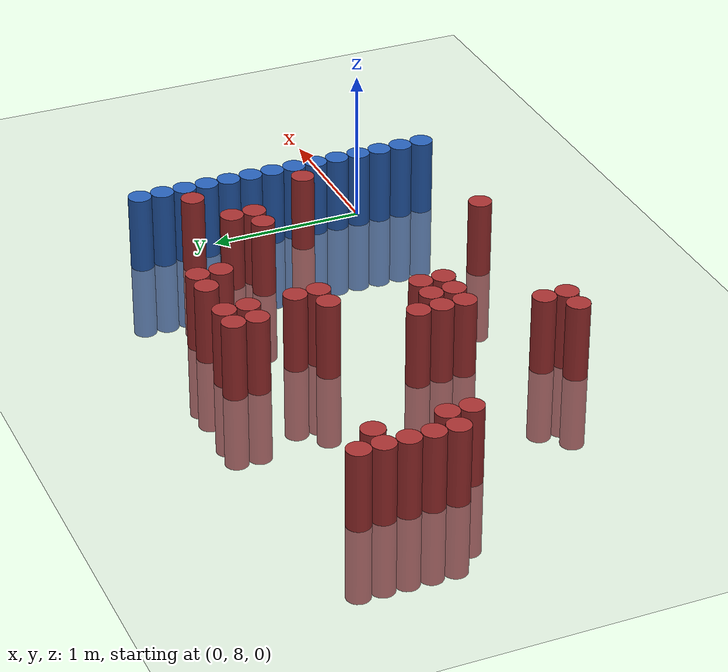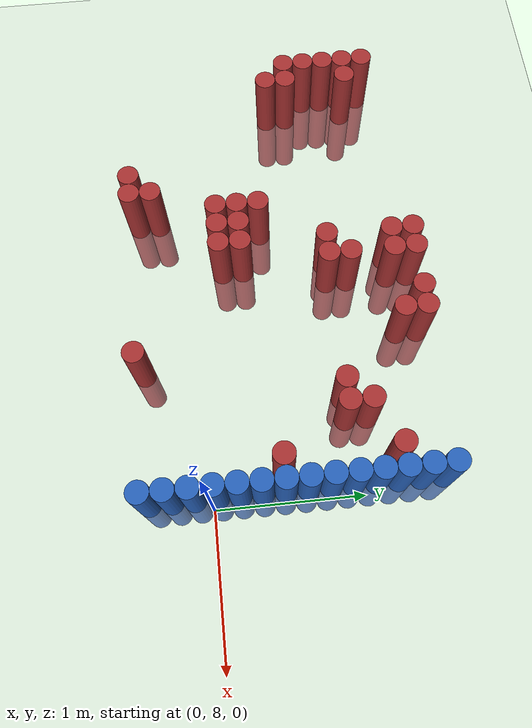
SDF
<sdf version="1.6">
 <world name="default">
  <model name="ground_plane">
   <static>1</static>
   <link name="link">
    <collision name="collision">
     <geometry><plane><normal>0 0 1</normal><size>100 100</size></plane></geometry>
     <surface><friction><ode><mu>100</mu><mu2>50</mu2></ode></friction></surface>
    </collision>
    <visual name="visual">
     <cast_shadows>0</cast_shadows>
     <geometry><plane><normal>0 0 1</normal><size>100 100</size></plane></geometry>
     <material>
      <script><uri>file://media/materials/scripts/gazebo.material</uri><name>Gazebo/Grey</name></script>
     </material>
    </visual>
   </link>
  </model>
  <model name="unit_cylinder_158">
   <static>1</static>
   <pose>-3.225000 8.775000 0.000000 0.000000 0.000000 0.000000</pose>
   <link name="link">
    <inertial>
     <mass>1</mass>
     <inertia><ixx>0.145833</ixx><ixy>0</ixy><ixz>0</ixz><iyy>0.145833</iyy><iyz>0</iyz><izz>0.125</izz></inertia>
    </inertial>
    <collision name="collision">
     <geometry><cylinder><radius>0.075000</radius><length>1</length></cylinder></geometry>
    </collision>
    <visual name="visual">
     <geometry><cylinder><radius>0.075000</radius><length>1</length></cylinder></geometry>
     <material>
      <ambient>0.648000 0.192000 0.192000 1</ambient>
      <diffuse>0.648000 0.192000 0.192000 1</diffuse>
     </material>
     <material>
      <script><name>Gazebo/Grey</name><uri>file://media/materials/scripts/gazebo.material</uri></script>
     </material>
    </visual>
   </link>
  </model>
  <model name="unit_cylinder_159">
   <static>1</static>
   <pose>-3.225000 8.925000 0.000000 0.000000 0.000000 0.000000</pose>
   <link name="link">
    <inertial>
     <mass>1</mass>
     <inertia><ixx>0.145833</ixx><ixy>0</ixy><ixz>0</ixz><iyy>0.145833</iyy><iyz>0</iyz><izz>0.125</izz></inertia>
    </inertial>
    <collision name="collision">
     <geometry><cylinder><radius>0.075000</radius><length>1</length></cylinder></geometry>
    </collision>
    <visual name="visual">
     <geometry><cylinder><radius>0.075000</radius><length>1</length></cylinder></geometry>
     <material>
      <ambient>0.648000 0.192000 0.192000 1</ambient>
      <diffuse>0.648000 0.192000 0.192000 1</diffuse>
     </material>
     <material>
      <script><name>Gazebo/Grey</name><uri>file://media/materials/scripts/gazebo.material</uri></script>
     </material>
    </visual>
   </link>
  </model>
  <model name="unit_cylinder_160">
   <static>1</static>
   <pose>-3.225000 9.075000 0.000000 0.000000 0.000000 0.000000</pose>
   <link name="link">
    <inertial>
     <mass>1</mass>
     <inertia><ixx>0.145833</ixx><ixy>0</ixy><ixz>0</ixz><iyy>0.145833</iyy><iyz>0</iyz><izz>0.125</izz></inertia>
    </inertial>
    <collision name="collision">
     <geometry><cylinder><radius>0.075000</radius><length>1</length></cylinder></geometry>
    </collision>
    <visual name="visual">
     <geometry><cylinder><radius>0.075000</radius><length>1</length></cylinder></geometry>
     <material>
      <ambient>0.648000 0.192000 0.192000 1</ambient>
      <diffuse>0.648000 0.192000 0.192000 1</diffuse>
     </material>
     <material>
      <script><name>Gazebo/Grey</name><uri>file://media/materials/scripts/gazebo.material</uri></script>
     </material>
    </visual>
   </link>
  </model>
  <model name="unit_cylinder_161">
   <static>1</static>
   <pose>-3.225000 9.225000 0.000000 0.000000 0.000000 0.000000</pose>
   <link name="link">
    <inertial>
     <mass>1</mass>
     <inertia><ixx>0.145833</ixx><ixy>0</ixy><ixz>0</ixz><iyy>0.145833</iyy><iyz>0</iyz><izz>0.125</izz></inertia>
    </inertial>
    <collision name="collision">
     <geometry><cylinder><radius>0.075000</radius><length>1</length></cylinder></geometry>
    </collision>
    <visual name="visual">
     <geometry><cylinder><radius>0.075000</radius><length>1</length></cylinder></geometry>
     <material>
      <ambient>0.648000 0.192000 0.192000 1</ambient>
      <diffuse>0.648000 0.192000 0.192000 1</diffuse>
     </material>
     <material>
      <script><name>Gazebo/Grey</name><uri>file://media/materials/scripts/gazebo.material</uri></script>
     </material>
    </visual>
   </link>
  </model>
  <model name="unit_cylinder_162">
   <static>1</static>
   <pose>-3.225000 9.375000 0.000000 0.000000 0.000000 0.000000</pose>
   <link name="link">
    <inertial>
     <mass>1</mass>
     <inertia><ixx>0.145833</ixx><ixy>0</ixy><ixz>0</ixz><iyy>0.145833</iyy><iyz>0</iyz><izz>0.125</izz></inertia>
    </inertial>
    <collision name="collision">
     <geometry><cylinder><radius>0.075000</radius><length>1</length></cylinder></geometry>
    </collision>
    <visual name="visual">
     <geometry><cylinder><radius>0.075000</radius><length>1</length></cylinder></geometry>
     <material>
      <ambient>0.648000 0.192000 0.192000 1</ambient>
      <diffuse>0.648000 0.192000 0.192000 1</diffuse>
     </material>
     <material>
      <script><name>Gazebo/Grey</name><uri>file://media/materials/scripts/gazebo.material</uri></script>
     </material>
    </visual>
   </link>
  </model>
  <model name="unit_cylinder_165">
   <static>1</static>
   <pose>-3.075000 8.625000 0.000000 0.000000 0.000000 0.000000</pose>
   <link name="link">
    <inertial>
     <mass>1</mass>
     <inertia><ixx>0.145833</ixx><ixy>0</ixy><ixz>0</ixz><iyy>0.145833</iyy><iyz>0</iyz><izz>0.125</izz></inertia>
    </inertial>
    <collision name="collision">
     <geometry><cylinder><radius>0.075000</radius><length>1</length></cylinder></geometry>
    </collision>
    <visual name="visual">
     <geometry><cylinder><radius>0.075000</radius><length>1</length></cylinder></geometry>
     <material>
      <ambient>0.648000 0.192000 0.192000 1</ambient>
      <diffuse>0.648000 0.192000 0.192000 1</diffuse>
     </material>
     <material>
      <script><name>Gazebo/Grey</name><uri>file://media/materials/scripts/gazebo.material</uri></script>
     </material>
    </visual>
   </link>
  </model>
  <model name="unit_cylinder_166">
   <static>1</static>
   <pose>-3.075000 8.775000 0.000000 0.000000 0.000000 0.000000</pose>
   <link name="link">
    <inertial>
     <mass>1</mass>
     <inertia><ixx>0.145833</ixx><ixy>0</ixy><ixz>0</ixz><iyy>0.145833</iyy><iyz>0</iyz><izz>0.125</izz></inertia>
    </inertial>
    <collision name="collision">
     <geometry><cylinder><radius>0.075000</radius><length>1</length></cylinder></geometry>
    </collision>
    <visual name="visual">
     <geometry><cylinder><radius>0.075000</radius><length>1</length></cylinder></geometry>
     <material>
      <ambient>0.648000 0.192000 0.192000 1</ambient>
      <diffuse>0.648000 0.192000 0.192000 1</diffuse>
     </material>
     <material>
      <script><name>Gazebo/Grey</name><uri>file://media/materials/scripts/gazebo.material</uri></script>
     </material>
    </visual>
   </link>
  </model>
  <model name="unit_cylinder_167">
   <static>1</static>
   <pose>-3.075000 9.225000 0.000000 0.000000 0.000000 0.000000</pose>
   <link name="link">
    <inertial>
     <mass>1</mass>
     <inertia><ixx>0.145833</ixx><ixy>0</ixy><ixz>0</ixz><iyy>0.145833</iyy><iyz>0</iyz><izz>0.125</izz></inertia>
    </inertial>
    <collision name="collision">
     <geometry><cylinder><radius>0.075000</radius><length>1</length></cylinder></geometry>
    </collision>
    <visual name="visual">
     <geometry><cylinder><radius>0.075000</radius><length>1</length></cylinder></geometry>
     <material>
      <ambient>0.648000 0.192000 0.192000 1</ambient>
      <diffuse>0.648000 0.192000 0.192000 1</diffuse>
     </material>
     <material>
      <script><name>Gazebo/Grey</name><uri>file://media/materials/scripts/gazebo.material</uri></script>
     </material>
    </visual>
   </link>
  </model>
  <model name="unit_cylinder_175">
   <static>1</static>
   <pose>-2.325000 7.575000 0.000000 0.000000 0.000000 0.000000</pose>
   <link name="link">
    <inertial>
     <mass>1</mass>
     <inertia><ixx>0.145833</ixx><ixy>0</ixy><ixz>0</ixz><iyy>0.145833</iyy><iyz>0</iyz><izz>0.125</izz></inertia>
    </inertial>
    <collision name="collision">
     <geometry><cylinder><radius>0.075000</radius><length>1</length></cylinder></geometry>
    </collision>
    <visual name="visual">
     <geometry><cylinder><radius>0.075000</radius><length>1</length></cylinder></geometry>
     <material>
      <ambient>0.648000 0.192000 0.192000 1</ambient>
      <diffuse>0.648000 0.192000 0.192000 1</diffuse>
     </material>
     <material>
      <script><name>Gazebo/Grey</name><uri>file://media/materials/scripts/gazebo.material</uri></script>
     </material>
    </visual>
   </link>
  </model>
  <model name="unit_cylinder_179">
   <static>1</static>
   <pose>-2.175000 7.575000 0.000000 0.000000 0.000000 0.000000</pose>
   <link name="link">
    <inertial>
     <mass>1</mass>
     <inertia><ixx>0.145833</ixx><ixy>0</ixy><ixz>0</ixz><iyy>0.145833</iyy><iyz>0</iyz><izz>0.125</izz></inertia>
    </inertial>
    <collision name="collision">
     <geometry><cylinder><radius>0.075000</radius><length>1</length></cylinder></geometry>
    </collision>
    <visual name="visual">
     <geometry><cylinder><radius>0.075000</radius><length>1</length></cylinder></geometry>
     <material>
      <ambient>0.648000 0.192000 0.192000 1</ambient>
      <diffuse>0.648000 0.192000 0.192000 1</diffuse>
     </material>
     <material>
      <script><name>Gazebo/Grey</name><uri>file://media/materials/scripts/gazebo.material</uri></script>
     </material>
    </visual>
   </link>
  </model>
  <model name="unit_cylinder_180">
   <static>1</static>
   <pose>-2.175000 7.725000 0.000000 0.000000 0.000000 0.000000</pose>
   <link name="link">
    <inertial>
     <mass>1</mass>
     <inertia><ixx>0.145833</ixx><ixy>0</ixy><ixz>0</ixz><iyy>0.145833</iyy><iyz>0</iyz><izz>0.125</izz></inertia>
    </inertial>
    <collision name="collision">
     <geometry><cylinder><radius>0.075000</radius><length>1</length></cylinder></geometry>
    </collision>
    <visual name="visual">
     <geometry><cylinder><radius>0.075000</radius><length>1</length></cylinder></geometry>
     <material>
      <ambient>0.648000 0.192000 0.192000 1</ambient>
      <diffuse>0.648000 0.192000 0.192000 1</diffuse>
     </material>
     <material>
      <script><name>Gazebo/Grey</name><uri>file://media/materials/scripts/gazebo.material</uri></script>
     </material>
    </visual>
   </link>
  </model>
  <model name="unit_cylinder_184">
   <static>1</static>
   <pose>-2.025000 8.175000 0.000000 0.000000 0.000000 0.000000</pose>
   <link name="link">
    <inertial>
     <mass>1</mass>
     <inertia><ixx>0.145833</ixx><ixy>0</ixy><ixz>0</ixz><iyy>0.145833</iyy><iyz>0</iyz><izz>0.125</izz></inertia>
    </inertial>
    <collision name="collision">
     <geometry><cylinder><radius>0.075000</radius><length>1</length></cylinder></geometry>
    </collision>
    <visual name="visual">
     <geometry><cylinder><radius>0.075000</radius><length>1</length></cylinder></geometry>
     <material>
      <ambient>0.648000 0.192000 0.192000 1</ambient>
      <diffuse>0.648000 0.192000 0.192000 1</diffuse>
     </material>
     <material>
      <script><name>Gazebo/Grey</name><uri>file://media/materials/scripts/gazebo.material</uri></script>
     </material>
    </visual>
   </link>
  </model>
  <model name="unit_cylinder_185">
   <static>1</static>
   <pose>-2.025000 8.325000 0.000000 0.000000 0.000000 0.000000</pose>
   <link name="link">
    <inertial>
     <mass>1</mass>
     <inertia><ixx>0.145833</ixx><ixy>0</ixy><ixz>0</ixz><iyy>0.145833</iyy><iyz>0</iyz><izz>0.125</izz></inertia>
    </inertial>
    <collision name="collision">
     <geometry><cylinder><radius>0.075000</radius><length>1</length></cylinder></geometry>
    </collision>
    <visual name="visual">
     <geometry><cylinder><radius>0.075000</radius><length>1</length></cylinder></geometry>
     <material>
      <ambient>0.648000 0.192000 0.192000 1</ambient>
      <diffuse>0.648000 0.192000 0.192000 1</diffuse>
     </material>
     <material>
      <script><name>Gazebo/Grey</name><uri>file://media/materials/scripts/gazebo.material</uri></script>
     </material>
    </visual>
   </link>
  </model>
  <model name="unit_cylinder_186">
   <static>1</static>
   <pose>-2.025000 8.475000 0.000000 0.000000 0.000000 0.000000</pose>
   <link name="link">
    <inertial>
     <mass>1</mass>
     <inertia><ixx>0.145833</ixx><ixy>0</ixy><ixz>0</ixz><iyy>0.145833</iyy><iyz>0</iyz><izz>0.125</izz></inertia>
    </inertial>
    <collision name="collision">
     <geometry><cylinder><radius>0.075000</radius><length>1</length></cylinder></geometry>
    </collision>
    <visual name="visual">
     <geometry><cylinder><radius>0.075000</radius><length>1</length></cylinder></geometry>
     <material>
      <ambient>0.648000 0.192000 0.192000 1</ambient>
      <diffuse>0.648000 0.192000 0.192000 1</diffuse>
     </material>
     <material>
      <script><name>Gazebo/Grey</name><uri>file://media/materials/scripts/gazebo.material</uri></script>
     </material>
    </visual>
   </link>
  </model>
  <model name="unit_cylinder_193">
   <static>1</static>
   <pose>-1.875000 8.175000 0.000000 0.000000 0.000000 0.000000</pose>
   <link name="link">
    <inertial>
     <mass>1</mass>
     <inertia><ixx>0.145833</ixx><ixy>0</ixy><ixz>0</ixz><iyy>0.145833</iyy><iyz>0</iyz><izz>0.125</izz></inertia>
    </inertial>
    <collision name="collision">
     <geometry><cylinder><radius>0.075000</radius><length>1</length></cylinder></geometry>
    </collision>
    <visual name="visual">
     <geometry><cylinder><radius>0.075000</radius><length>1</length></cylinder></geometry>
     <material>
      <ambient>0.648000 0.192000 0.192000 1</ambient>
      <diffuse>0.648000 0.192000 0.192000 1</diffuse>
     </material>
     <material>
      <script><name>Gazebo/Grey</name><uri>file://media/materials/scripts/gazebo.material</uri></script>
     </material>
    </visual>
   </link>
  </model>
  <model name="unit_cylinder_194">
   <static>1</static>
   <pose>-1.875000 8.325000 0.000000 0.000000 0.000000 0.000000</pose>
   <link name="link">
    <inertial>
     <mass>1</mass>
     <inertia><ixx>0.145833</ixx><ixy>0</ixy><ixz>0</ixz><iyy>0.145833</iyy><iyz>0</iyz><izz>0.125</izz></inertia>
    </inertial>
    <collision name="collision">
     <geometry><cylinder><radius>0.075000</radius><length>1</length></cylinder></geometry>
    </collision>
    <visual name="visual">
     <geometry><cylinder><radius>0.075000</radius><length>1</length></cylinder></geometry>
     <material>
      <ambient>0.648000 0.192000 0.192000 1</ambient>
      <diffuse>0.648000 0.192000 0.192000 1</diffuse>
     </material>
     <material>
      <script><name>Gazebo/Grey</name><uri>file://media/materials/scripts/gazebo.material</uri></script>
     </material>
    </visual>
   </link>
  </model>
  <model name="unit_cylinder_203">
   <static>1</static>
   <pose>-1.725000 8.175000 0.000000 0.000000 0.000000 0.000000</pose>
   <link name="link">
    <inertial>
     <mass>1</mass>
     <inertia><ixx>0.145833</ixx><ixy>0</ixy><ixz>0</ixz><iyy>0.145833</iyy><iyz>0</iyz><izz>0.125</izz></inertia>
    </inertial>
    <collision name="collision">
     <geometry><cylinder><radius>0.075000</radius><length>1</length></cylinder></geometry>
    </collision>
    <visual name="visual">
     <geometry><cylinder><radius>0.075000</radius><length>1</length></cylinder></geometry>
     <material>
      <ambient>0.648000 0.192000 0.192000 1</ambient>
      <diffuse>0.648000 0.192000 0.192000 1</diffuse>
     </material>
     <material>
      <script><name>Gazebo/Grey</name><uri>file://media/materials/scripts/gazebo.material</uri></script>
     </material>
    </visual>
   </link>
  </model>
  <model name="unit_cylinder_204">
   <static>1</static>
   <pose>-1.725000 8.325000 0.000000 0.000000 0.000000 0.000000</pose>
   <link name="link">
    <inertial>
     <mass>1</mass>
     <inertia><ixx>0.145833</ixx><ixy>0</ixy><ixz>0</ixz><iyy>0.145833</iyy><iyz>0</iyz><izz>0.125</izz></inertia>
    </inertial>
    <collision name="collision">
     <geometry><cylinder><radius>0.075000</radius><length>1</length></cylinder></geometry>
    </collision>
    <visual name="visual">
     <geometry><cylinder><radius>0.075000</radius><length>1</length></cylinder></geometry>
     <material>
      <ambient>0.648000 0.192000 0.192000 1</ambient>
      <diffuse>0.648000 0.192000 0.192000 1</diffuse>
     </material>
     <material>
      <script><name>Gazebo/Grey</name><uri>file://media/materials/scripts/gazebo.material</uri></script>
     </material>
    </visual>
   </link>
  </model>
  <model name="unit_cylinder_205">
   <static>1</static>
   <pose>-1.725000 8.925000 0.000000 0.000000 0.000000 0.000000</pose>
   <link name="link">
    <inertial>
     <mass>1</mass>
     <inertia><ixx>0.145833</ixx><ixy>0</ixy><ixz>0</ixz><iyy>0.145833</iyy><iyz>0</iyz><izz>0.125</izz></inertia>
    </inertial>
    <collision name="collision">
     <geometry><cylinder><radius>0.075000</radius><length>1</length></cylinder></geometry>
    </collision>
    <visual name="visual">
     <geometry><cylinder><radius>0.075000</radius><length>1</length></cylinder></geometry>
     <material>
      <ambient>0.648000 0.192000 0.192000 1</ambient>
      <diffuse>0.648000 0.192000 0.192000 1</diffuse>
     </material>
     <material>
      <script><name>Gazebo/Grey</name><uri>file://media/materials/scripts/gazebo.material</uri></script>
     </material>
    </visual>
   </link>
  </model>
  <model name="unit_cylinder_206">
   <static>1</static>
   <pose>-1.725000 9.375000 0.000000 0.000000 0.000000 0.000000</pose>
   <link name="link">
    <inertial>
     <mass>1</mass>
     <inertia><ixx>0.145833</ixx><ixy>0</ixy><ixz>0</ixz><iyy>0.145833</iyy><iyz>0</iyz><izz>0.125</izz></inertia>
    </inertial>
    <collision name="collision">
     <geometry><cylinder><radius>0.075000</radius><length>1</length></cylinder></geometry>
    </collision>
    <visual name="visual">
     <geometry><cylinder><radius>0.075000</radius><length>1</length></cylinder></geometry>
     <material>
      <ambient>0.648000 0.192000 0.192000 1</ambient>
      <diffuse>0.648000 0.192000 0.192000 1</diffuse>
     </material>
     <material>
      <script><name>Gazebo/Grey</name><uri>file://media/materials/scripts/gazebo.material</uri></script>
     </material>
    </visual>
   </link>
  </model>
  <model name="unit_cylinder_207">
   <static>1</static>
   <pose>-1.725000 9.525000 0.000000 0.000000 0.000000 0.000000</pose>
   <link name="link">
    <inertial>
     <mass>1</mass>
     <inertia><ixx>0.145833</ixx><ixy>0</ixy><ixz>0</ixz><iyy>0.145833</iyy><iyz>0</iyz><izz>0.125</izz></inertia>
    </inertial>
    <collision name="collision">
     <geometry><cylinder><radius>0.075000</radius><length>1</length></cylinder></geometry>
    </collision>
    <visual name="visual">
     <geometry><cylinder><radius>0.075000</radius><length>1</length></cylinder></geometry>
     <material>
      <ambient>0.648000 0.192000 0.192000 1</ambient>
      <diffuse>0.648000 0.192000 0.192000 1</diffuse>
     </material>
     <material>
      <script><name>Gazebo/Grey</name><uri>file://media/materials/scripts/gazebo.material</uri></script>
     </material>
    </visual>
   </link>
  </model>
  <model name="unit_cylinder_212">
   <static>1</static>
   <pose>-1.575000 8.925000 0.000000 0.000000 0.000000 0.000000</pose>
   <link name="link">
    <inertial>
     <mass>1</mass>
     <inertia><ixx>0.145833</ixx><ixy>0</ixy><ixz>0</ixz><iyy>0.145833</iyy><iyz>0</iyz><izz>0.125</izz></inertia>
    </inertial>
    <collision name="collision">
     <geometry><cylinder><radius>0.075000</radius><length>1</length></cylinder></geometry>
    </collision>
    <visual name="visual">
     <geometry><cylinder><radius>0.075000</radius><length>1</length></cylinder></geometry>
     <material>
      <ambient>0.648000 0.192000 0.192000 1</ambient>
      <diffuse>0.648000 0.192000 0.192000 1</diffuse>
     </material>
     <material>
      <script><name>Gazebo/Grey</name><uri>file://media/materials/scripts/gazebo.material</uri></script>
     </material>
    </visual>
   </link>
  </model>
  <model name="unit_cylinder_213">
   <static>1</static>
   <pose>-1.575000 9.075000 0.000000 0.000000 0.000000 0.000000</pose>
   <link name="link">
    <inertial>
     <mass>1</mass>
     <inertia><ixx>0.145833</ixx><ixy>0</ixy><ixz>0</ixz><iyy>0.145833</iyy><iyz>0</iyz><izz>0.125</izz></inertia>
    </inertial>
    <collision name="collision">
     <geometry><cylinder><radius>0.075000</radius><length>1</length></cylinder></geometry>
    </collision>
    <visual name="visual">
     <geometry><cylinder><radius>0.075000</radius><length>1</length></cylinder></geometry>
     <material>
      <ambient>0.648000 0.192000 0.192000 1</ambient>
      <diffuse>0.648000 0.192000 0.192000 1</diffuse>
     </material>
     <material>
      <script><name>Gazebo/Grey</name><uri>file://media/materials/scripts/gazebo.material</uri></script>
     </material>
    </visual>
   </link>
  </model>
  <model name="unit_cylinder_214">
   <static>1</static>
   <pose>-1.575000 9.375000 0.000000 0.000000 0.000000 0.000000</pose>
   <link name="link">
    <inertial>
     <mass>1</mass>
     <inertia><ixx>0.145833</ixx><ixy>0</ixy><ixz>0</ixz><iyy>0.145833</iyy><iyz>0</iyz><izz>0.125</izz></inertia>
    </inertial>
    <collision name="collision">
     <geometry><cylinder><radius>0.075000</radius><length>1</length></cylinder></geometry>
    </collision>
    <visual name="visual">
     <geometry><cylinder><radius>0.075000</radius><length>1</length></cylinder></geometry>
     <material>
      <ambient>0.648000 0.192000 0.192000 1</ambient>
      <diffuse>0.648000 0.192000 0.192000 1</diffuse>
     </material>
     <material>
      <script><name>Gazebo/Grey</name><uri>file://media/materials/scripts/gazebo.material</uri></script>
     </material>
    </visual>
   </link>
  </model>
  <model name="unit_cylinder_215">
   <static>1</static>
   <pose>-1.575000 9.525000 0.000000 0.000000 0.000000 0.000000</pose>
   <link name="link">
    <inertial>
     <mass>1</mass>
     <inertia><ixx>0.145833</ixx><ixy>0</ixy><ixz>0</ixz><iyy>0.145833</iyy><iyz>0</iyz><izz>0.125</izz></inertia>
    </inertial>
    <collision name="collision">
     <geometry><cylinder><radius>0.075000</radius><length>1</length></cylinder></geometry>
    </collision>
    <visual name="visual">
     <geometry><cylinder><radius>0.075000</radius><length>1</length></cylinder></geometry>
     <material>
      <ambient>0.648000 0.192000 0.192000 1</ambient>
      <diffuse>0.648000 0.192000 0.192000 1</diffuse>
     </material>
     <material>
      <script><name>Gazebo/Grey</name><uri>file://media/materials/scripts/gazebo.material</uri></script>
     </material>
    </visual>
   </link>
  </model>
  <model name="unit_cylinder_219">
   <static>1</static>
   <pose>-1.275000 9.525000 0.000000 0.000000 0.000000 0.000000</pose>
   <link name="link">
    <inertial>
     <mass>1</mass>
     <inertia><ixx>0.145833</ixx><ixy>0</ixy><ixz>0</ixz><iyy>0.145833</iyy><iyz>0</iyz><izz>0.125</izz></inertia>
    </inertial>
    <collision name="collision">
     <geometry><cylinder><radius>0.075000</radius><length>1</length></cylinder></geometry>
    </collision>
    <visual name="visual">
     <geometry><cylinder><radius>0.075000</radius><length>1</length></cylinder></geometry>
     <material>
      <ambient>0.648000 0.192000 0.192000 1</ambient>
      <diffuse>0.648000 0.192000 0.192000 1</diffuse>
     </material>
     <material>
      <script><name>Gazebo/Grey</name><uri>file://media/materials/scripts/gazebo.material</uri></script>
     </material>
    </visual>
   </link>
  </model>
  <model name="unit_cylinder_223">
   <static>1</static>
   <pose>-1.125000 9.375000 0.000000 0.000000 0.000000 0.000000</pose>
   <link name="link">
    <inertial>
     <mass>1</mass>
     <inertia><ixx>0.145833</ixx><ixy>0</ixy><ixz>0</ixz><iyy>0.145833</iyy><iyz>0</iyz><izz>0.125</izz></inertia>
    </inertial>
    <collision name="collision">
     <geometry><cylinder><radius>0.075000</radius><length>1</length></cylinder></geometry>
    </collision>
    <visual name="visual">
     <geometry><cylinder><radius>0.075000</radius><length>1</length></cylinder></geometry>
     <material>
      <ambient>0.648000 0.192000 0.192000 1</ambient>
      <diffuse>0.648000 0.192000 0.192000 1</diffuse>
     </material>
     <material>
      <script><name>Gazebo/Grey</name><uri>file://media/materials/scripts/gazebo.material</uri></script>
     </material>
    </visual>
   </link>
  </model>
  <model name="unit_cylinder_224">
   <static>1</static>
   <pose>-1.125000 9.525000 0.000000 0.000000 0.000000 0.000000</pose>
   <link name="link">
    <inertial>
     <mass>1</mass>
     <inertia><ixx>0.145833</ixx><ixy>0</ixy><ixz>0</ixz><iyy>0.145833</iyy><iyz>0</iyz><izz>0.125</izz></inertia>
    </inertial>
    <collision name="collision">
     <geometry><cylinder><radius>0.075000</radius><length>1</length></cylinder></geometry>
    </collision>
    <visual name="visual">
     <geometry><cylinder><radius>0.075000</radius><length>1</length></cylinder></geometry>
     <material>
      <ambient>0.648000 0.192000 0.192000 1</ambient>
      <diffuse>0.648000 0.192000 0.192000 1</diffuse>
     </material>
     <material>
      <script><name>Gazebo/Grey</name><uri>file://media/materials/scripts/gazebo.material</uri></script>
     </material>
    </visual>
   </link>
  </model>
  <model name="unit_cylinder_227">
   <static>1</static>
   <pose>-0.975000 7.575000 0.000000 0.000000 0.000000 0.000000</pose>
   <link name="link">
    <inertial>
     <mass>1</mass>
     <inertia><ixx>0.145833</ixx><ixy>0</ixy><ixz>0</ixz><iyy>0.145833</iyy><iyz>0</iyz><izz>0.125</izz></inertia>
    </inertial>
    <collision name="collision">
     <geometry><cylinder><radius>0.075000</radius><length>1</length></cylinder></geometry>
    </collision>
    <visual name="visual">
     <geometry><cylinder><radius>0.075000</radius><length>1</length></cylinder></geometry>
     <material>
      <ambient>0.648000 0.192000 0.192000 1</ambient>
      <diffuse>0.648000 0.192000 0.192000 1</diffuse>
     </material>
     <material>
      <script><name>Gazebo/Grey</name><uri>file://media/materials/scripts/gazebo.material</uri></script>
     </material>
    </visual>
   </link>
  </model>
  <model name="unit_cylinder_233">
   <static>1</static>
   <pose>-0.675000 8.925000 0.000000 0.000000 0.000000 0.000000</pose>
   <link name="link">
    <inertial>
     <mass>1</mass>
     <inertia><ixx>0.145833</ixx><ixy>0</ixy><ixz>0</ixz><iyy>0.145833</iyy><iyz>0</iyz><izz>0.125</izz></inertia>
    </inertial>
    <collision name="collision">
     <geometry><cylinder><radius>0.075000</radius><length>1</length></cylinder></geometry>
    </collision>
    <visual name="visual">
     <geometry><cylinder><radius>0.075000</radius><length>1</length></cylinder></geometry>
     <material>
      <ambient>0.648000 0.192000 0.192000 1</ambient>
      <diffuse>0.648000 0.192000 0.192000 1</diffuse>
     </material>
     <material>
      <script><name>Gazebo/Grey</name><uri>file://media/materials/scripts/gazebo.material</uri></script>
     </material>
    </visual>
   </link>
  </model>
  <model name="unit_cylinder_240">
   <static>1</static>
   <pose>-0.525000 8.925000 0.000000 0.000000 0.000000 0.000000</pose>
   <link name="link">
    <inertial>
     <mass>1</mass>
     <inertia><ixx>0.145833</ixx><ixy>0</ixy><ixz>0</ixz><iyy>0.145833</iyy><iyz>0</iyz><izz>0.125</izz></inertia>
    </inertial>
    <collision name="collision">
     <geometry><cylinder><radius>0.075000</radius><length>1</length></cylinder></geometry>
    </collision>
    <visual name="visual">
     <geometry><cylinder><radius>0.075000</radius><length>1</length></cylinder></geometry>
     <material>
      <ambient>0.648000 0.192000 0.192000 1</ambient>
      <diffuse>0.648000 0.192000 0.192000 1</diffuse>
     </material>
     <material>
      <script><name>Gazebo/Grey</name><uri>file://media/materials/scripts/gazebo.material</uri></script>
     </material>
    </visual>
   </link>
  </model>
  <model name="unit_cylinder_241">
   <static>1</static>
   <pose>-0.525000 9.075000 0.000000 0.000000 0.000000 0.000000</pose>
   <link name="link">
    <inertial>
     <mass>1</mass>
     <inertia><ixx>0.145833</ixx><ixy>0</ixy><ixz>0</ixz><iyy>0.145833</iyy><iyz>0</iyz><izz>0.125</izz></inertia>
    </inertial>
    <collision name="collision">
     <geometry><cylinder><radius>0.075000</radius><length>1</length></cylinder></geometry>
    </collision>
    <visual name="visual">
     <geometry><cylinder><radius>0.075000</radius><length>1</length></cylinder></geometry>
     <material>
      <ambient>0.648000 0.192000 0.192000 1</ambient>
      <diffuse>0.648000 0.192000 0.192000 1</diffuse>
     </material>
     <material>
      <script><name>Gazebo/Grey</name><uri>file://media/materials/scripts/gazebo.material</uri></script>
     </material>
    </visual>
   </link>
  </model>
  <model name="unit_cylinder_257">
   <static>1</static>
   <pose>-0.225000 8.475000 0.000000 0.000000 0.000000 0.000000</pose>
   <link name="link">
    <inertial>
     <mass>1</mass>
     <inertia><ixx>0.145833</ixx><ixy>0</ixy><ixz>0</ixz><iyy>0.145833</iyy><iyz>0</iyz><izz>0.125</izz></inertia>
    </inertial>
    <collision name="collision">
     <geometry><cylinder><radius>0.075000</radius><length>1</length></cylinder></geometry>
    </collision>
    <visual name="visual">
     <geometry><cylinder><radius>0.075000</radius><length>1</length></cylinder></geometry>
     <material>
      <ambient>0.648000 0.192000 0.192000 1</ambient>
      <diffuse>0.648000 0.192000 0.192000 1</diffuse>
     </material>
     <material>
      <script><name>Gazebo/Grey</name><uri>file://media/materials/scripts/gazebo.material</uri></script>
     </material>
    </visual>
   </link>
  </model>
  <model name="unit_cylinder_258">
   <static>1</static>
   <pose>-0.225000 9.225000 0.000000 0.000000 0.000000 0.000000</pose>
   <link name="link">
    <inertial>
     <mass>1</mass>
     <inertia><ixx>0.145833</ixx><ixy>0</ixy><ixz>0</ixz><iyy>0.145833</iyy><iyz>0</iyz><izz>0.125</izz></inertia>
    </inertial>
    <collision name="collision">
     <geometry><cylinder><radius>0.075000</radius><length>1</length></cylinder></geometry>
    </collision>
    <visual name="visual">
     <geometry><cylinder><radius>0.075000</radius><length>1</length></cylinder></geometry>
     <material>
      <ambient>0.648000 0.192000 0.192000 1</ambient>
      <diffuse>0.648000 0.192000 0.192000 1</diffuse>
     </material>
     <material>
      <script><name>Gazebo/Grey</name><uri>file://media/materials/scripts/gazebo.material</uri></script>
     </material>
    </visual>
   </link>
  </model>
  <model name="unit_cylinder_275">
   <static>1</static>
   <pose>-0.075000 7.575000 0.000000 0.000000 0.000000 0.000000</pose>
   <link name="link">
    <inertial>
     <mass>1</mass>
     <inertia><ixx>0.145833</ixx><ixy>0</ixy><ixz>0</ixz><iyy>0.145833</iyy><iyz>0</iyz><izz>0.125</izz></inertia>
    </inertial>
    <collision name="collision">
     <geometry><cylinder><radius>0.075000</radius><length>1</length></cylinder></geometry>
    </collision>
    <visual name="visual">
     <geometry><cylinder><radius>0.075000</radius><length>1</length></cylinder></geometry>
     <material>
      <ambient>0.152000 0.379000 0.720000 1</ambient>
      <diffuse>0.152000 0.379000 0.720000 1</diffuse>
     </material>
     <material>
      <script><name>Gazebo/Grey</name><uri>file://media/materials/scripts/gazebo.material</uri></script>
     </material>
    </visual>
   </link>
  </model>
  <model name="unit_cylinder_276">
   <static>1</static>
   <pose>-0.075000 7.725000 0.000000 0.000000 0.000000 0.000000</pose>
   <link name="link">
    <inertial>
     <mass>1</mass>
     <inertia><ixx>0.145833</ixx><ixy>0</ixy><ixz>0</ixz><iyy>0.145833</iyy><iyz>0</iyz><izz>0.125</izz></inertia>
    </inertial>
    <collision name="collision">
     <geometry><cylinder><radius>0.075000</radius><length>1</length></cylinder></geometry>
    </collision>
    <visual name="visual">
     <geometry><cylinder><radius>0.075000</radius><length>1</length></cylinder></geometry>
     <material>
      <ambient>0.152000 0.379000 0.720000 1</ambient>
      <diffuse>0.152000 0.379000 0.720000 1</diffuse>
     </material>
     <material>
      <script><name>Gazebo/Grey</name><uri>file://media/materials/scripts/gazebo.material</uri></script>
     </material>
    </visual>
   </link>
  </model>
  <model name="unit_cylinder_277">
   <static>1</static>
   <pose>-0.075000 7.875000 0.000000 0.000000 0.000000 0.000000</pose>
   <link name="link">
    <inertial>
     <mass>1</mass>
     <inertia><ixx>0.145833</ixx><ixy>0</ixy><ixz>0</ixz><iyy>0.145833</iyy><iyz>0</iyz><izz>0.125</izz></inertia>
    </inertial>
    <collision name="collision">
     <geometry><cylinder><radius>0.075000</radius><length>1</length></cylinder></geometry>
    </collision>
    <visual name="visual">
     <geometry><cylinder><radius>0.075000</radius><length>1</length></cylinder></geometry>
     <material>
      <ambient>0.152000 0.379000 0.720000 1</ambient>
      <diffuse>0.152000 0.379000 0.720000 1</diffuse>
     </material>
     <material>
      <script><name>Gazebo/Grey</name><uri>file://media/materials/scripts/gazebo.material</uri></script>
     </material>
    </visual>
   </link>
  </model>
  <model name="unit_cylinder_278">
   <static>1</static>
   <pose>-0.075000 8.025000 0.000000 0.000000 0.000000 0.000000</pose>
   <link name="link">
    <inertial>
     <mass>1</mass>
     <inertia><ixx>0.145833</ixx><ixy>0</ixy><ixz>0</ixz><iyy>0.145833</iyy><iyz>0</iyz><izz>0.125</izz></inertia>
    </inertial>
    <collision name="collision">
     <geometry><cylinder><radius>0.075000</radius><length>1</length></cylinder></geometry>
    </collision>
    <visual name="visual">
     <geometry><cylinder><radius>0.075000</radius><length>1</length></cylinder></geometry>
     <material>
      <ambient>0.152000 0.379000 0.720000 1</ambient>
      <diffuse>0.152000 0.379000 0.720000 1</diffuse>
     </material>
     <material>
      <script><name>Gazebo/Grey</name><uri>file://media/materials/scripts/gazebo.material</uri></script>
     </material>
    </visual>
   </link>
  </model>
  <model name="unit_cylinder_279">
   <static>1</static>
   <pose>-0.075000 8.175000 0.000000 0.000000 0.000000 0.000000</pose>
   <link name="link">
    <inertial>
     <mass>1</mass>
     <inertia><ixx>0.145833</ixx><ixy>0</ixy><ixz>0</ixz><iyy>0.145833</iyy><iyz>0</iyz><izz>0.125</izz></inertia>
    </inertial>
    <collision name="collision">
     <geometry><cylinder><radius>0.075000</radius><length>1</length></cylinder></geometry>
    </collision>
    <visual name="visual">
     <geometry><cylinder><radius>0.075000</radius><length>1</length></cylinder></geometry>
     <material>
      <ambient>0.152000 0.379000 0.720000 1</ambient>
      <diffuse>0.152000 0.379000 0.720000 1</diffuse>
     </material>
     <material>
      <script><name>Gazebo/Grey</name><uri>file://media/materials/scripts/gazebo.material</uri></script>
     </material>
    </visual>
   </link>
  </model>
  <model name="unit_cylinder_280">
   <static>1</static>
   <pose>-0.075000 8.325000 0.000000 0.000000 0.000000 0.000000</pose>
   <link name="link">
    <inertial>
     <mass>1</mass>
     <inertia><ixx>0.145833</ixx><ixy>0</ixy><ixz>0</ixz><iyy>0.145833</iyy><iyz>0</iyz><izz>0.125</izz></inertia>
    </inertial>
    <collision name="collision">
     <geometry><cylinder><radius>0.075000</radius><length>1</length></cylinder></geometry>
    </collision>
    <visual name="visual">
     <geometry><cylinder><radius>0.075000</radius><length>1</length></cylinder></geometry>
     <material>
      <ambient>0.152000 0.379000 0.720000 1</ambient>
      <diffuse>0.152000 0.379000 0.720000 1</diffuse>
     </material>
     <material>
      <script><name>Gazebo/Grey</name><uri>file://media/materials/scripts/gazebo.material</uri></script>
     </material>
    </visual>
   </link>
  </model>
  <model name="unit_cylinder_281">
   <static>1</static>
   <pose>-0.075000 8.475000 0.000000 0.000000 0.000000 0.000000</pose>
   <link name="link">
    <inertial>
     <mass>1</mass>
     <inertia><ixx>0.145833</ixx><ixy>0</ixy><ixz>0</ixz><iyy>0.145833</iyy><iyz>0</iyz><izz>0.125</izz></inertia>
    </inertial>
    <collision name="collision">
     <geometry><cylinder><radius>0.075000</radius><length>1</length></cylinder></geometry>
    </collision>
    <visual name="visual">
     <geometry><cylinder><radius>0.075000</radius><length>1</length></cylinder></geometry>
     <material>
      <ambient>0.152000 0.379000 0.720000 1</ambient>
      <diffuse>0.152000 0.379000 0.720000 1</diffuse>
     </material>
     <material>
      <script><name>Gazebo/Grey</name><uri>file://media/materials/scripts/gazebo.material</uri></script>
     </material>
    </visual>
   </link>
  </model>
  <model name="unit_cylinder_282">
   <static>1</static>
   <pose>-0.075000 8.625000 0.000000 0.000000 0.000000 0.000000</pose>
   <link name="link">
    <inertial>
     <mass>1</mass>
     <inertia><ixx>0.145833</ixx><ixy>0</ixy><ixz>0</ixz><iyy>0.145833</iyy><iyz>0</iyz><izz>0.125</izz></inertia>
    </inertial>
    <collision name="collision">
     <geometry><cylinder><radius>0.075000</radius><length>1</length></cylinder></geometry>
    </collision>
    <visual name="visual">
     <geometry><cylinder><radius>0.075000</radius><length>1</length></cylinder></geometry>
     <material>
      <ambient>0.152000 0.379000 0.720000 1</ambient>
      <diffuse>0.152000 0.379000 0.720000 1</diffuse>
     </material>
     <material>
      <script><name>Gazebo/Grey</name><uri>file://media/materials/scripts/gazebo.material</uri></script>
     </material>
    </visual>
   </link>
  </model>
  <model name="unit_cylinder_283">
   <static>1</static>
   <pose>-0.075000 8.775000 0.000000 0.000000 0.000000 0.000000</pose>
   <link name="link">
    <inertial>
     <mass>1</mass>
     <inertia><ixx>0.145833</ixx><ixy>0</ixy><ixz>0</ixz><iyy>0.145833</iyy><iyz>0</iyz><izz>0.125</izz></inertia>
    </inertial>
    <collision name="collision">
     <geometry><cylinder><radius>0.075000</radius><length>1</length></cylinder></geometry>
    </collision>
    <visual name="visual">
     <geometry><cylinder><radius>0.075000</radius><length>1</length></cylinder></geometry>
     <material>
      <ambient>0.152000 0.379000 0.720000 1</ambient>
      <diffuse>0.152000 0.379000 0.720000 1</diffuse>
     </material>
     <material>
      <script><name>Gazebo/Grey</name><uri>file://media/materials/scripts/gazebo.material</uri></script>
     </material>
    </visual>
   </link>
  </model>
  <model name="unit_cylinder_284">
   <static>1</static>
   <pose>-0.075000 8.925000 0.000000 0.000000 0.000000 0.000000</pose>
   <link name="link">
    <inertial>
     <mass>1</mass>
     <inertia><ixx>0.145833</ixx><ixy>0</ixy><ixz>0</ixz><iyy>0.145833</iyy><iyz>0</iyz><izz>0.125</izz></inertia>
    </inertial>
    <collision name="collision">
     <geometry><cylinder><radius>0.075000</radius><length>1</length></cylinder></geometry>
    </collision>
    <visual name="visual">
     <geometry><cylinder><radius>0.075000</radius><length>1</length></cylinder></geometry>
     <material>
      <ambient>0.152000 0.379000 0.720000 1</ambient>
      <diffuse>0.152000 0.379000 0.720000 1</diffuse>
     </material>
     <material>
      <script><name>Gazebo/Grey</name><uri>file://media/materials/scripts/gazebo.material</uri></script>
     </material>
    </visual>
   </link>
  </model>
  <model name="unit_cylinder_285">
   <static>1</static>
   <pose>-0.075000 9.075000 0.000000 0.000000 0.000000 0.000000</pose>
   <link name="link">
    <inertial>
     <mass>1</mass>
     <inertia><ixx>0.145833</ixx><ixy>0</ixy><ixz>0</ixz><iyy>0.145833</iyy><iyz>0</iyz><izz>0.125</izz></inertia>
    </inertial>
    <collision name="collision">
     <geometry><cylinder><radius>0.075000</radius><length>1</length></cylinder></geometry>
    </collision>
    <visual name="visual">
     <geometry><cylinder><radius>0.075000</radius><length>1</length></cylinder></geometry>
     <material>
      <ambient>0.152000 0.379000 0.720000 1</ambient>
      <diffuse>0.152000 0.379000 0.720000 1</diffuse>
     </material>
     <material>
      <script><name>Gazebo/Grey</name><uri>file://media/materials/scripts/gazebo.material</uri></script>
     </material>
    </visual>
   </link>
  </model>
  <model name="unit_cylinder_286">
   <static>1</static>
   <pose>-0.075000 9.225000 0.000000 0.000000 0.000000 0.000000</pose>
   <link name="link">
    <inertial>
     <mass>1</mass>
     <inertia><ixx>0.145833</ixx><ixy>0</ixy><ixz>0</ixz><iyy>0.145833</iyy><iyz>0</iyz><izz>0.125</izz></inertia>
    </inertial>
    <collision name="collision">
     <geometry><cylinder><radius>0.075000</radius><length>1</length></cylinder></geometry>
    </collision>
    <visual name="visual">
     <geometry><cylinder><radius>0.075000</radius><length>1</length></cylinder></geometry>
     <material>
      <ambient>0.152000 0.379000 0.720000 1</ambient>
      <diffuse>0.152000 0.379000 0.720000 1</diffuse>
     </material>
     <material>
      <script><name>Gazebo/Grey</name><uri>file://media/materials/scripts/gazebo.material</uri></script>
     </material>
    </visual>
   </link>
  </model>
  <model name="unit_cylinder_287">
   <static>1</static>
   <pose>-0.075000 9.375000 0.000000 0.000000 0.000000 0.000000</pose>
   <link name="link">
    <inertial>
     <mass>1</mass>
     <inertia><ixx>0.145833</ixx><ixy>0</ixy><ixz>0</ixz><iyy>0.145833</iyy><iyz>0</iyz><izz>0.125</izz></inertia>
    </inertial>
    <collision name="collision">
     <geometry><cylinder><radius>0.075000</radius><length>1</length></cylinder></geometry>
    </collision>
    <visual name="visual">
     <geometry><cylinder><radius>0.075000</radius><length>1</length></cylinder></geometry>
     <material>
      <ambient>0.152000 0.379000 0.720000 1</ambient>
      <diffuse>0.152000 0.379000 0.720000 1</diffuse>
     </material>
     <material>
      <script><name>Gazebo/Grey</name><uri>file://media/materials/scripts/gazebo.material</uri></script>
     </material>
    </visual>
   </link>
  </model>
  <model name="unit_cylinder_288">
   <static>1</static>
   <pose>-0.075000 9.525000 0.000000 0.000000 0.000000 0.000000</pose>
   <link name="link">
    <inertial>
     <mass>1</mass>
     <inertia><ixx>0.145833</ixx><ixy>0</ixy><ixz>0</ixz><iyy>0.145833</iyy><iyz>0</iyz><izz>0.125</izz></inertia>
    </inertial>
    <collision name="collision">
     <geometry><cylinder><radius>0.075000</radius><length>1</length></cylinder></geometry>
    </collision>
    <visual name="visual">
     <geometry><cylinder><radius>0.075000</radius><length>1</length></cylinder></geometry>
     <material>
      <ambient>0.152000 0.379000 0.720000 1</ambient>
      <diffuse>0.152000 0.379000 0.720000 1</diffuse>
     </material>
     <material>
      <script><name>Gazebo/Grey</name><uri>file://media/materials/scripts/gazebo.material</uri></script>
     </material>
    </visual>
   </link>
  </model>
 </world>
</sdf>
